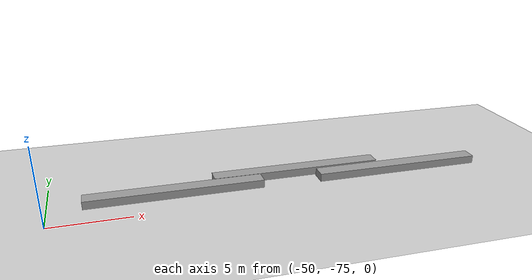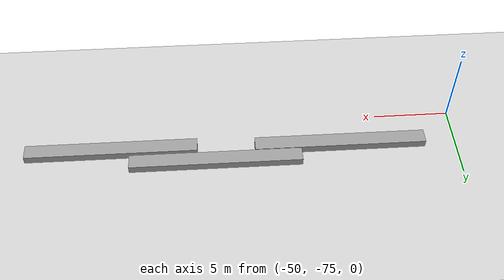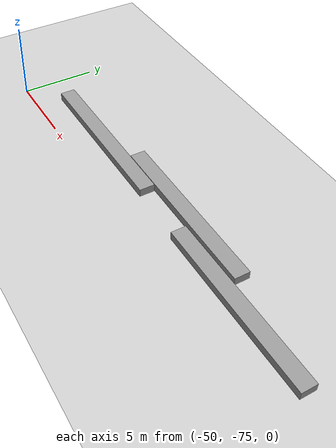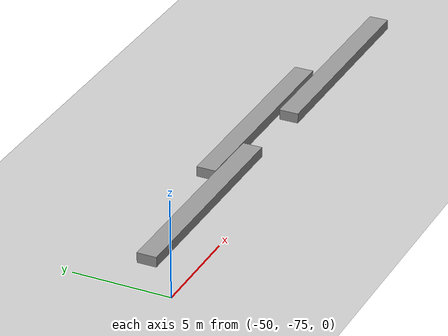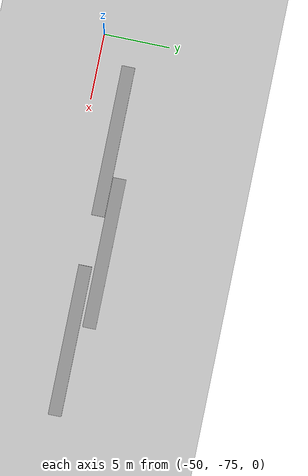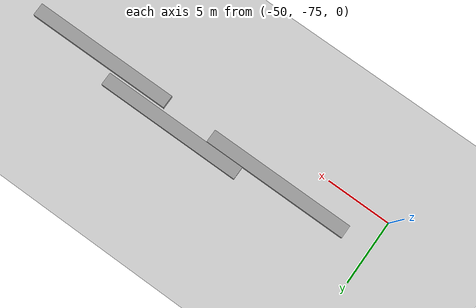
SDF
<sdf version="1.6">
 <world name="default">
  <model name="ground_plane">
   <static>1</static>
   <link name="link">
    <collision name="collision">
     <geometry><plane><normal>0 0 1</normal><size>100 100</size></plane></geometry>
     <surface><friction><ode><mu>100</mu><mu2>50</mu2></ode></friction></surface>
    </collision>
    <visual name="visual">
     <cast_shadows>0</cast_shadows>
     <geometry><plane><normal>0 0 1</normal><size>100 100</size></plane></geometry>
     <material>
      <script><uri>file://media/materials/scripts/gazebo.material</uri><name>Gazebo/Grey</name></script>
     </material>
    </visual>
   </link>
  </model>
  <model name="unit_box_0_static_clone_3">
   <link name="link">
    <inertial>
     <mass>11.3696</mass>
     <inertia><ixx>1.89495</ixx><ixy>0</ixy><ixz>0</ixz><iyy>123.426</iyy><iyz>0</iyz><izz>123.426</izz></inertia>
    </inertial>
    <kinematic>1</kinematic>
    <visual name="visual">
     <geometry><box><size>11.3696 1 1</size></box></geometry>
     <material>
      <script><name>Gazebo/Grey</name><uri>file://media/materials/scripts/gazebo.material</uri></script>
      <ambient>0.3 0.3 0.3 1</ambient>
      <diffuse>0.7 0.7 0.7 1</diffuse>
      <specular>0.01 0.01 0.01 1</specular>
      <emissive>0 0 0 1</emissive>
     </material>
    </visual>
    <collision name="collision">
     <geometry><box><size>11.3696 1 1</size></box></geometry>
     <surface>
      <friction>
       <ode><mu>1</mu><mu2>1</mu2><fdir1>0 0 0</fdir1><slip1>0</slip1><slip2>0</slip2></ode>
       <torsional>
        <coefficient>1</coefficient>
        <patch_radius>0</patch_radius>
        <surface_radius>0</surface_radius>
        <use_patch_radius>1</use_patch_radius>
        <ode><slip>0</slip></ode>
       </torsional>
      </friction>
      <bounce><restitution_coefficient>0</restitution_coefficient><threshold>1e+06</threshold></bounce>
      <contact>
       <collide_without_contact>0</collide_without_contact>
       <collide_without_contact_bitmask>1</collide_without_contact_bitmask>
       <collide_bitmask>1</collide_bitmask>
       <ode>
        <soft_cfm>0</soft_cfm>
        <soft_erp>0.2</soft_erp>
        <kp>1e+13</kp>
        <kd>1</kd>
        <max_vel>0.01</max_vel>
        <min_depth>0</min_depth>
       </ode>
       <bullet>
        <split_impulse>1</split_impulse>
        <split_impulse_penetration_threshold>-0.01</split_impulse_penetration_threshold>
        <soft_cfm>0</soft_cfm>
        <soft_erp>0.2</soft_erp>
        <kp>1e+13</kp>
        <kd>1</kd>
       </bullet>
      </contact>
     </surface>
    </collision>
   </link>
   <static>1</static>
   <pose>-42.2276 -72.7182 0 0 -0 0</pose>
  </model>
  <model name="unit_box_0_static_clone_4">
   <link name="link">
    <inertial>
     <mass>11.3696</mass>
     <inertia><ixx>1.89495</ixx><ixy>0</ixy><ixz>0</ixz><iyy>123.426</iyy><iyz>0</iyz><izz>123.426</izz></inertia>
    </inertial>
    <kinematic>1</kinematic>
    <visual name="visual">
     <geometry><box><size>11.3696 1 1</size></box></geometry>
     <material>
      <script><name>Gazebo/Grey</name><uri>file://media/materials/scripts/gazebo.material</uri></script>
      <ambient>0.3 0.3 0.3 1</ambient>
      <diffuse>0.7 0.7 0.7 1</diffuse>
      <specular>0.01 0.01 0.01 1</specular>
      <emissive>0 0 0 1</emissive>
     </material>
    </visual>
    <collision name="collision">
     <geometry><box><size>11.3696 1 1</size></box></geometry>
     <surface>
      <friction>
       <ode><mu>1</mu><mu2>1</mu2><fdir1>0 0 0</fdir1><slip1>0</slip1><slip2>0</slip2></ode>
       <torsional>
        <coefficient>1</coefficient>
        <patch_radius>0</patch_radius>
        <surface_radius>0</surface_radius>
        <use_patch_radius>1</use_patch_radius>
        <ode><slip>0</slip></ode>
       </torsional>
      </friction>
      <bounce><restitution_coefficient>0</restitution_coefficient><threshold>1e+06</threshold></bounce>
      <contact>
       <collide_without_contact>0</collide_without_contact>
       <collide_without_contact_bitmask>1</collide_without_contact_bitmask>
       <collide_bitmask>1</collide_bitmask>
       <ode>
        <soft_cfm>0</soft_cfm>
        <soft_erp>0.2</soft_erp>
        <kp>1e+13</kp>
        <kd>1</kd>
        <max_vel>0.01</max_vel>
        <min_depth>0</min_depth>
       </ode>
       <bullet>
        <split_impulse>1</split_impulse>
        <split_impulse_penetration_threshold>-0.01</split_impulse_penetration_threshold>
        <soft_cfm>0</soft_cfm>
        <soft_erp>0.2</soft_erp>
        <kp>1e+13</kp>
        <kd>1</kd>
       </bullet>
      </contact>
     </surface>
    </collision>
   </link>
   <static>1</static>
   <pose>-33.9131 -71.6896 0 0 -0 0</pose>
  </model>
  <model name="unit_box_0_static_clone_5">
   <link name="link">
    <inertial>
     <mass>11.3696</mass>
     <inertia><ixx>1.89495</ixx><ixy>0</ixy><ixz>0</ixz><iyy>123.426</iyy><iyz>0</iyz><izz>123.426</izz></inertia>
    </inertial>
    <kinematic>1</kinematic>
    <visual name="visual">
     <geometry><box><size>11.3696 1 1</size></box></geometry>
     <material>
      <script><name>Gazebo/Grey</name><uri>file://media/materials/scripts/gazebo.material</uri></script>
      <ambient>0.3 0.3 0.3 1</ambient>
      <diffuse>0.7 0.7 0.7 1</diffuse>
      <specular>0.01 0.01 0.01 1</specular>
      <emissive>0 0 0 1</emissive>
     </material>
    </visual>
    <collision name="collision">
     <geometry><box><size>11.3696 1 1</size></box></geometry>
     <surface>
      <friction>
       <ode><mu>1</mu><mu2>1</mu2><fdir1>0 0 0</fdir1><slip1>0</slip1><slip2>0</slip2></ode>
       <torsional>
        <coefficient>1</coefficient>
        <patch_radius>0</patch_radius>
        <surface_radius>0</surface_radius>
        <use_patch_radius>1</use_patch_radius>
        <ode><slip>0</slip></ode>
       </torsional>
      </friction>
      <bounce><restitution_coefficient>0</restitution_coefficient><threshold>1e+06</threshold></bounce>
      <contact>
       <collide_without_contact>0</collide_without_contact>
       <collide_without_contact_bitmask>1</collide_without_contact_bitmask>
       <collide_bitmask>1</collide_bitmask>
       <ode>
        <soft_cfm>0</soft_cfm>
        <soft_erp>0.2</soft_erp>
        <kp>1e+13</kp>
        <kd>1</kd>
        <max_vel>0.01</max_vel>
        <min_depth>0</min_depth>
       </ode>
       <bullet>
        <split_impulse>1</split_impulse>
        <split_impulse_penetration_threshold>-0.01</split_impulse_penetration_threshold>
        <soft_cfm>0</soft_cfm>
        <soft_erp>0.2</soft_erp>
        <kp>1e+13</kp>
        <kd>1</kd>
       </bullet>
      </contact>
     </surface>
    </collision>
   </link>
   <static>1</static>
   <pose>-27.0319 -72.8904 0 0 -0 0</pose>
  </model>
 </world>
</sdf>
